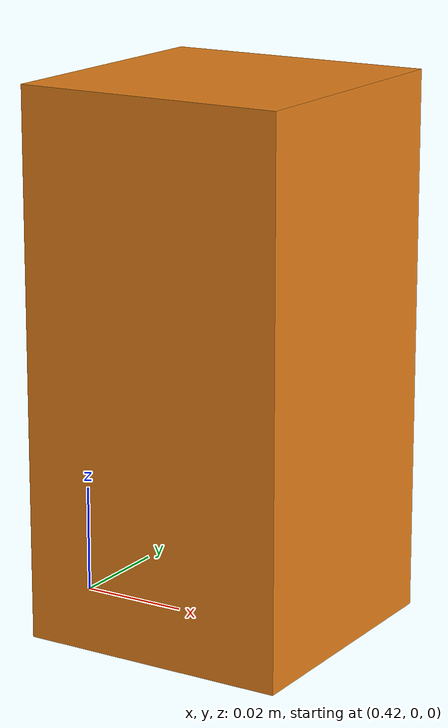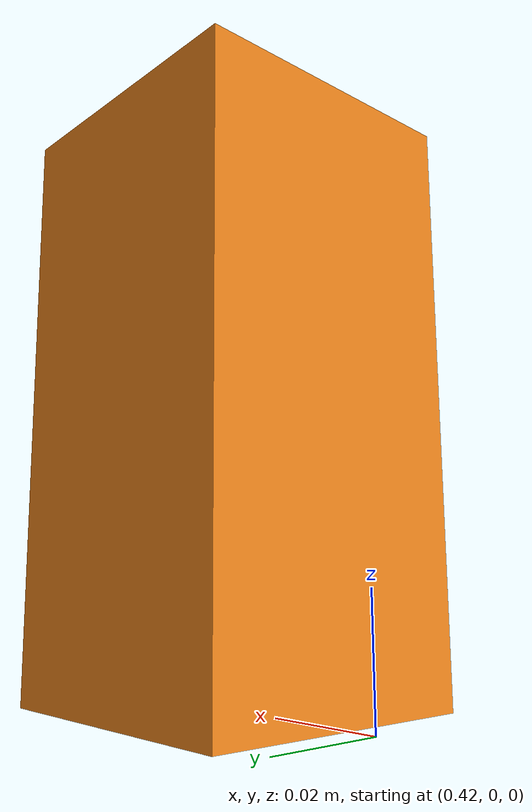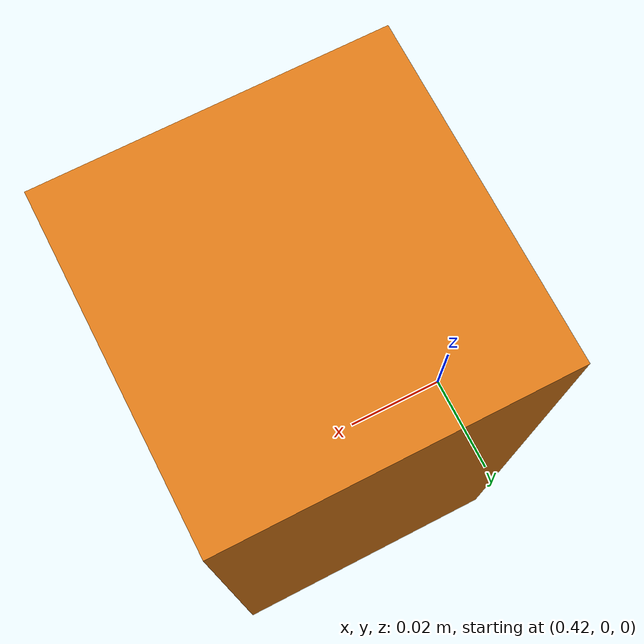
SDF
<?xml version="1.0"?>
<!-- 8-09 파지 검증용 **시험 물체**. 시뮬레이션 전용 fixture다.
     값의 근거는 config/gazebo/test_object.json에 함께 적어 둔다.
     실제 제품 규격이 아니며, 마찰 계수는 시험용으로 정한 값이다. -->
<sdf version="1.9">
  <model name="sim_test_box_a">
    <pose>0.45 0.0 0.05 0 0 0</pose>
    <link name="body">
      <inertial>
        <mass>0.2</mass>
        <inertia>
          <ixx>0.00020833</ixx><iyy>0.00020833</iyy><izz>0.00008333</izz>
          <ixy>0</ixy><ixz>0</ixz><iyz>0</iyz>
        </inertia>
      </inertial>
      <collision name="collision">
        <geometry><box><size>0.05 0.05 0.1</size></box></geometry>
        <surface>
          <friction><ode><mu>0.8</mu><mu2>0.8</mu2></ode></friction>
          <contact><collide_bitmask>1</collide_bitmask></contact>
        </surface>
      </collision>
      <visual name="visual">
        <geometry><box><size>0.05 0.05 0.1</size></box></geometry>
        <material>
          <ambient>0.9 0.5 0.1 1</ambient>
          <diffuse>0.9 0.5 0.1 1</diffuse>
        </material>
      </visual>
    </link>
  </model>
</sdf>
